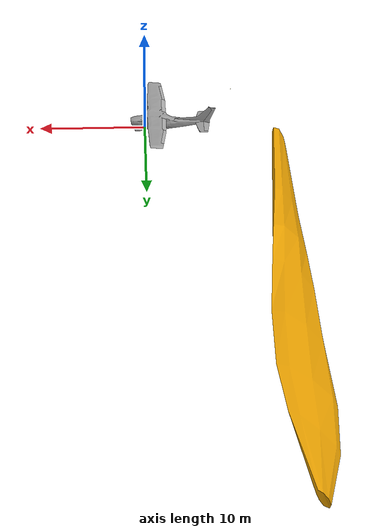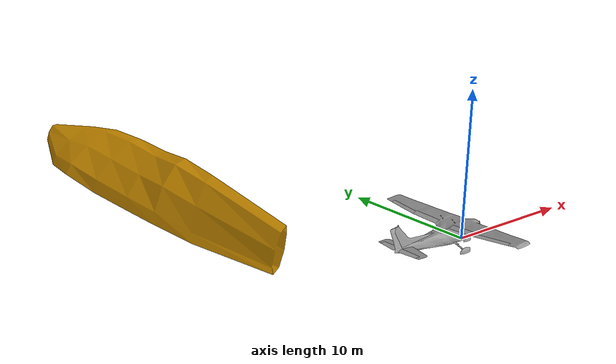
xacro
<?xml version="1.0"?>
<robot xmlns:xacro="http://www.ros.org/wiki/xacro" name="main_airplane">
    <xacro:include filename="$(find uav_description)/urdf/fixed_wing/airplane.xacro"/>
    <xacro:arg name="robot_name" default="airplane_1"/>
    <xacro:arg name="robot_scale" default="1.0"/>
    <xacro:arg name="camera_num" default="1.0"/>

    <!-- Characteristics required by the GNSS plugin: -->
    <xacro:arg name= "world_name" default="empty_world" />
    <xacro:arg name= "initial_alt" default="50.0" />

    <!-- Define the Fog characteristics-->
    <xacro:arg name= "fog_lifetime" default = "1"/>
    <xacro:arg name= "fog_rate" default = "5"/>
    <xacro:arg name= "enable_fog" default="false"/>

    <xacro:airplane
        robot_name="$(arg robot_name)"
        robot_scale="$(arg robot_scale)"
        camera_num="$(arg camera_num)"
        world_name="$(arg world_name)"
        initial_alt="$(arg initial_alt)"
        fog_lifetime="$(arg fog_lifetime)"
        fog_rate="$(arg fog_rate)"
        enable_fog="$(arg enable_fog)"/>
</robot>

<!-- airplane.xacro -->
<robot name="airplane" xmlns:xacro="http://ros.org/wiki/xacro">

    <!-- Add the Gazebo xacro file-->
    <xacro:include filename="$(find uav_description)/urdf/fixed_wing/airplane_gazebo.xacro"/>
    <!-- Add the for spawner file-->
    <xacro:include filename="$(find uav_description)/urdf/fixed_wing/add_fog.xacro"/>

    <xacro:macro name="airplane" params="robot_scale robot_name camera_num world_name initial_alt fog_lifetime fog_rate enable_fog">
        <!-- LINK SECTIONS OF THE AIRPLANE-->
        <!-- Dummy link -->
        <link name="base_link"/>

        <!-- Links of the airplane structure-->
        <link name="airplane_link">
            <inertial>
                <mass value="${680.389 * robot_scale**3}" />
                <origin xyz="0 0 0" rpy="0 0 0"/>
                <inertia ixx="${1285.315427874 * robot_scale**5}" ixy="0" ixz="0"
                        iyy="${1824.930976707 * robot_scale**5}" iyz="0"
                        izz="${2666.893931043 * robot_scale**5}" />
            </inertial>
            <collision name="collision">
                <geometry>
                <mesh filename="file://$(find uav_description)/meshes/Cessna/body.dae"
                        scale="${robot_scale} ${robot_scale} ${robot_scale}"/>
                </geometry>
            </collision>
            <visual name="visual">
                <geometry>
                <mesh filename="file://$(find uav_description)/meshes/Cessna/body.dae"
                        scale="${robot_scale} ${robot_scale} ${robot_scale}"/>
                </geometry>
            </visual>
        </link>

        <!-- left_aileron_link -->
        <link name="left_aileron_link">
            <inertial>
                <mass value="${2 * robot_scale**3}" />
                <origin xyz="0 0 0" rpy="0 0 0"/>
                <inertia ixx="${0.8434 * robot_scale**5}" ixy="0" ixz="0"
                        iyy="${0.0119 * robot_scale**5}" iyz="0" izz="${0.855 * robot_scale**5}"/>
            </inertial>
            <collision name="collision">
                <geometry>
                <mesh filename="file://$(find uav_description)/meshes/Cessna/left_aileron.dae"
                        scale="${robot_scale} ${robot_scale} ${robot_scale}"/>
                </geometry>
            </collision>
            <visual name="visual">
                <geometry>
                <mesh filename="file://$(find uav_description)/meshes/Cessna/left_aileron.dae"
                        scale="${robot_scale} ${robot_scale} ${robot_scale}"/>
                </geometry>
            </visual>
        </link>

        <!-- left_flap_link -->
        <link name="left_flap_link">
            <inertial>
                <mass value="${2 * robot_scale**3}" />
                <origin xyz="0 0 0" rpy="0 0 0"/>
                <inertia ixx="${0.6747 * robot_scale**5}" ixy="0" ixz="0"
                        iyy="${0.0242 * robot_scale**5}" iyz="0" izz="${0.6962 * robot_scale**5}"/>
            </inertial>
            <collision name="collision">
                <geometry>
                <mesh filename="file://$(find uav_description)/meshes/Cessna/left_flap.dae"
                        scale="${robot_scale} ${robot_scale} ${robot_scale}"/>
                </geometry>
            </collision>
            <visual name="visual">
                <geometry>
                <mesh filename="file://$(find uav_description)/meshes/Cessna/left_flap.dae"
                        scale="${robot_scale} ${robot_scale} ${robot_scale}"/>
                </geometry>
            </visual>
        </link>

        <!-- right_aileron_link -->
        <link name="right_aileron_link">
            <inertial>
                <mass value="${2 * robot_scale**3}" />
                <origin xyz="0 0 0" rpy="0 0 0"/>
                <inertia ixx="${0.8434 * robot_scale**5}" ixy="0" ixz="0"
                        iyy="${0.0119 * robot_scale**5}" iyz="0" izz="${0.855 * robot_scale**5}"/>
            </inertial>
            <collision name="collision">
                <geometry>
                <mesh filename="file://$(find uav_description)/meshes/Cessna/right_aileron.dae"
                        scale="${robot_scale} ${robot_scale} ${robot_scale}"/>
                </geometry>
            </collision>
            <visual name="visual">
                <geometry>
                <mesh filename="file://$(find uav_description)/meshes/Cessna/right_aileron.dae"
                        scale="${robot_scale} ${robot_scale} ${robot_scale}"/>
                </geometry>
            </visual>
        </link>

        <!-- right_flap_link -->
        <link name="right_flap_link">
            <inertial>
                <mass value="${2 * robot_scale**3}" />
                <origin xyz="0 0 0" rpy="0 0 0"/>
                <inertia ixx="${0.6747 * robot_scale**5}" ixy="0" ixz="0"
                        iyy="${0.0242 * robot_scale**5}" iyz="0" izz="${0.6962 * robot_scale**5}"/>
            </inertial>
            <collision name="collision">
                <geometry>
                <mesh filename="file://$(find uav_description)/meshes/Cessna/right_flap.dae"
                        scale="${robot_scale} ${robot_scale} ${robot_scale}"/>
                </geometry>
            </collision>
            <visual name="visual">
                <geometry>
                <mesh filename="file://$(find uav_description)/meshes/Cessna/right_flap.dae"
                        scale="${robot_scale} ${robot_scale} ${robot_scale}"/>
                </geometry>
            </visual>
        </link>

        <!-- elevators_link -->
        <link name="elevators_link">
            <inertial>
                <mass value="${2 * robot_scale**3}" />
                <origin xyz="0 0 0" rpy="0 0 0"/>
                <inertia ixx="${1.5008 * robot_scale**5}" ixy="0" ixz="0"
                        iyy="${0.0274 * robot_scale**5}" iyz="0" izz="${1.5266 * robot_scale**5}"/>
            </inertial>
            <collision name="collision">
                <geometry>
                <mesh filename="file://$(find uav_description)/meshes/Cessna/elevators.dae"
                        scale="${robot_scale} ${robot_scale} ${robot_scale}"/>
                </geometry>
            </collision>
            <visual name="visual">
                <geometry>
                <mesh filename="file://$(find uav_description)/meshes/Cessna/elevators.dae"
                        scale="${robot_scale} ${robot_scale} ${robot_scale}"/>
                </geometry>
            </visual>
        </link>

        <!-- rudder_link -->
        <link name="rudder_link">
            <inertial>
                <mass value="${2 * robot_scale**3}" />
                <origin xyz="0 0 0" rpy="0 0 0"/>
                <inertia ixx="${0.4708 * robot_scale**5}" ixy="0" ixz="0"
                        iyy="${0.5208 * robot_scale**5}" iyz="0" izz="${0.0508 * robot_scale**5}"/>
            </inertial>
            <collision name="collision">
                <geometry>
                <mesh filename="file://$(find uav_description)/meshes/Cessna/rudder.dae"
                        scale="${robot_scale} ${robot_scale} ${robot_scale}"/>
                </geometry>
            </collision>
            <visual name="visual">
                <geometry>
                <mesh filename="file://$(find uav_description)/meshes/Cessna/rudder.dae"
                        scale="${robot_scale} ${robot_scale} ${robot_scale}"/>
                </geometry>
            </visual>
        </link>

        <!-- propeller_link -->
        <link name="propeller_link">
            <inertial>
                <mass value="${18.37 * robot_scale**3}" />
                <origin xyz="0 0 0" rpy="0 0 0"/>
                <inertia ixx="${7.5067 * robot_scale**5}" ixy="0" ixz="0"
                        iyy="${7.5150 * robot_scale**5}" iyz="0" izz="${0.068275 * robot_scale**5}"/>
            </inertial>
            <collision name="collision">
                <geometry>
                <mesh filename="file://$(find uav_description)/meshes/Cessna/cessna_prop.dae"
                        scale="${robot_scale} ${robot_scale} ${robot_scale}"/>
                </geometry>
            </collision>
            <visual name="visual">
                <geometry>
                <mesh filename="file://$(find uav_description)/meshes/Cessna/cessna_prop.dae"
                        scale="${robot_scale} ${robot_scale} ${robot_scale}"/>
                </geometry>
            </visual>
        </link>

        <!-- Fixed joint to dummy link -->
        <joint name="base_to_airplane" type="fixed">
            <parent link="base_link"/>
            <child link="airplane_link"/>
        </joint>
        <!-- Joitns of the model-->
        <joint name="left_aileron_joint" type="fixed">
            <parent link="airplane_link"/>
            <child link="left_aileron_link"/>
            <origin xyz="0.0 0.0 0.0" rpy="0.0 0.0 0.0"/>
        </joint>

        <joint name="left_flap_joint" type="fixed">
            <parent link="airplane_link"/>
            <child link="left_flap_link"/>
            <origin xyz="0.0 0.0 0.0" rpy="0.0 0 0.0"/>
        </joint>

        <joint name="right_aileron_joint" type="fixed">
            <parent link="airplane_link"/>
            <child link="right_aileron_link"/>
            <origin xyz="0.0 0.0 0.0" rpy="0.0 0 0.0"/>
        </joint>

        <joint name="right_flap_joint" type="fixed">
            <parent link="airplane_link"/>
            <child link="right_flap_link"/>
            <origin xyz="0.0 0.0 0.0" rpy="0.0 0 0.0"/>
        </joint>

        <joint name="elevators_joint" type="fixed">
            <parent link="airplane_link"/>
            <child link="elevators_link"/>
            <origin xyz="0.0 0.0 0.0" rpy="0.0 0 0.0"/>
        </joint>

        <joint name="rudder_joint" type="fixed">
            <parent link="airplane_link"/>
            <child link="rudder_link"/>
            <origin xyz="0.0 0.0 0.0" rpy="0.0 0 0.0"/>
        </joint>

        <joint name="propeller_joint" type="fixed">
            <parent link="airplane_link"/>
            <child link="propeller_link"/>
            <origin xyz="${1.79 * robot_scale} 0.0 ${0.855 * robot_scale}" rpy="1.5708 0 0.0"/>
        </joint>

        <!-- Link of the sensors by Jorge -->
        <!-- Frontal camera link:-->
        <link name="frontal_camera_link">
            <visual>
                <origin xyz="0 0 0" rpy="0 0 0"/>
                <geometry>
                    <box size="${0.02 * robot_scale} ${0.02 * robot_scale} ${0.02 * robot_scale}"/>
                </geometry>
            </visual>
            <inertial>
                <mass value="${0.001 * robot_scale}" />
                <origin xyz="0 0 0" rpy="0 0 0"/>
                <inertia ixx="0.00000015" ixy="0" ixz="0" iyy="0.00000015" iyz="0" izz="0.00000015" />
            </inertial>
        </link>
        <!-- GNSS Link for the Lidar sensor-->
        <link name="lidar_link">
            <visual>
                <origin xyz="0 0 0" rpy="0 0 0"/>
                <geometry>
                    <box size="${0.02 * robot_scale} ${0.02 * robot_scale} ${0.02 * robot_scale}"/>
                </geometry>
            </visual>
            <inertial>
                <mass value="${0.001 * robot_scale}" />
                <origin xyz="0 0 0" rpy="0 0 0"/>
                <inertia ixx="0.00000015" ixy="0" ixz="0" iyy="0.00000015" iyz="0" izz="0.00000015" />
            </inertial>
        </link>

        <!-- Joint of the sensors or plugin requirements -->
        <!-- Frontal camera fized joint-->
        <joint name="frontal_camera_link_joint" type="fixed">
            <origin rpy="0 0 0" xyz="${1.05 * robot_scale} 0.0 0.0"/>
            <parent link="airplane_link"/>
            <child link="frontal_camera_link"/>
        </joint>
        <!-- GNSS Lidar link-->
        <joint name="lidar_link_joint" type="fixed">
            <origin rpy="0 0 0" xyz="0.0 0.0 ${1.7 * robot_scale}"/>
            <parent link="airplane_link"/>
            <child link="lidar_link"/>
        </joint>

        <!-- Add a camera to follow the Airplane -->
        <link name="follow_camera_link">
            <visual>
                <origin xyz="0 0 0" rpy="0 0 0"/>
                <geometry>
                    <box size="${0.02 * robot_scale} ${0.02 * robot_scale} ${0.02 * robot_scale}"/>
                </geometry>
            </visual>
            <inertial>
                <mass value="${0.001 * robot_scale}" />
                <origin xyz="0 0 0" rpy="0 0 0"/>
                <inertia ixx="0.00000015" ixy="0" ixz="0" iyy="0.00000015" iyz="0" izz="0.00000015" />
            </inertial>
        </link>

        <joint name="follow_camera_link_joint" type="fixed">
            <origin rpy="0 0.2 0" xyz="${-8.0 * robot_scale} 0.0 ${4.2 * robot_scale}"/>
            <parent link="base_link"/>
            <child link="follow_camera_link"/>
        </joint>

        <!-- Input the gazebo sim pluggin xacro document-->
        <xacro:airplane_sim robot_name="$(arg robot_name)" camera_num="$(arg camera_num)" robot_scale="$(arg robot_scale)" world_name="$(arg world_name)" initial_alt="$(arg initial_alt)"/>

        <!-- Add the fog only if it is required -->
        <xacro:if value="$(arg enable_fog)">
            <xacro:add_fog robot_scale="$(arg robot_scale)" fog_lifetime="$(arg fog_lifetime)" fog_rate="$(arg fog_rate)"/>
        </xacro:if>
    </xacro:macro>

</robot>
